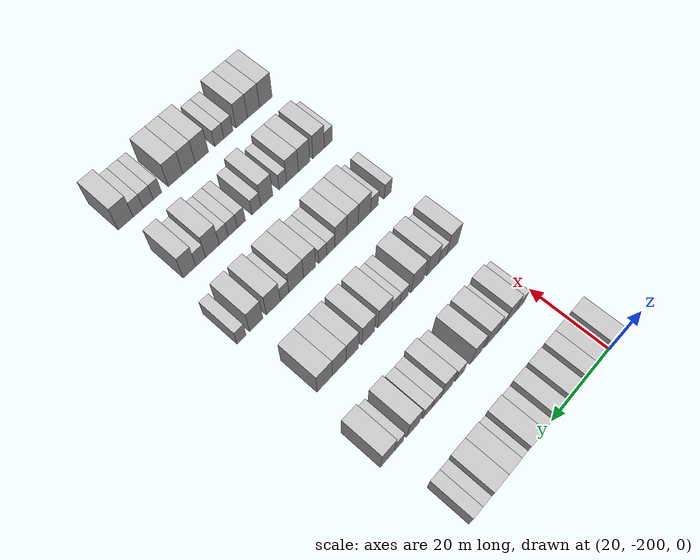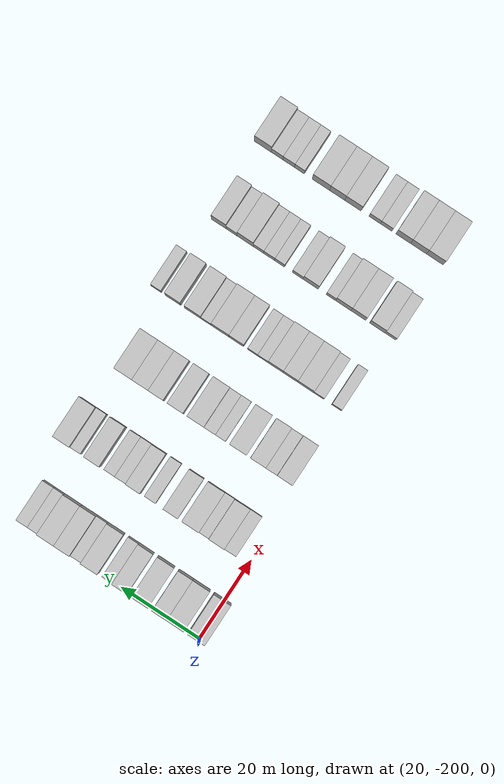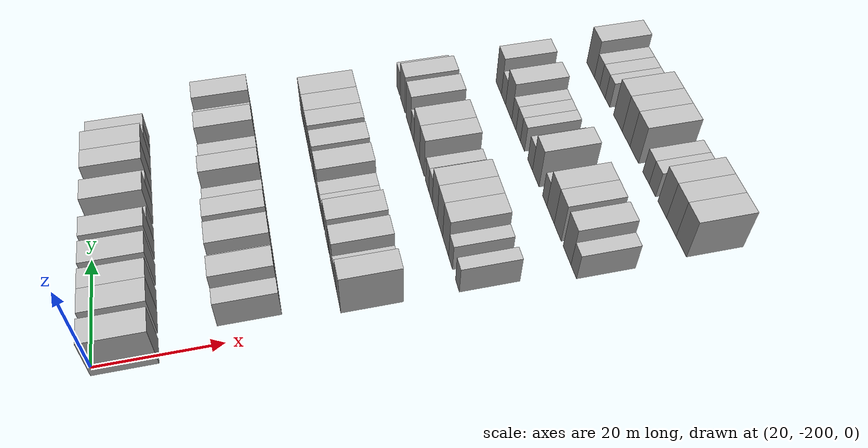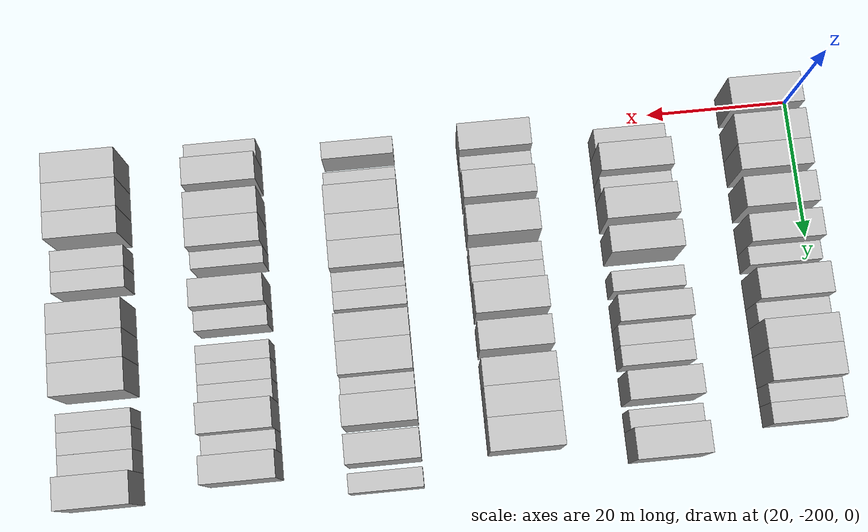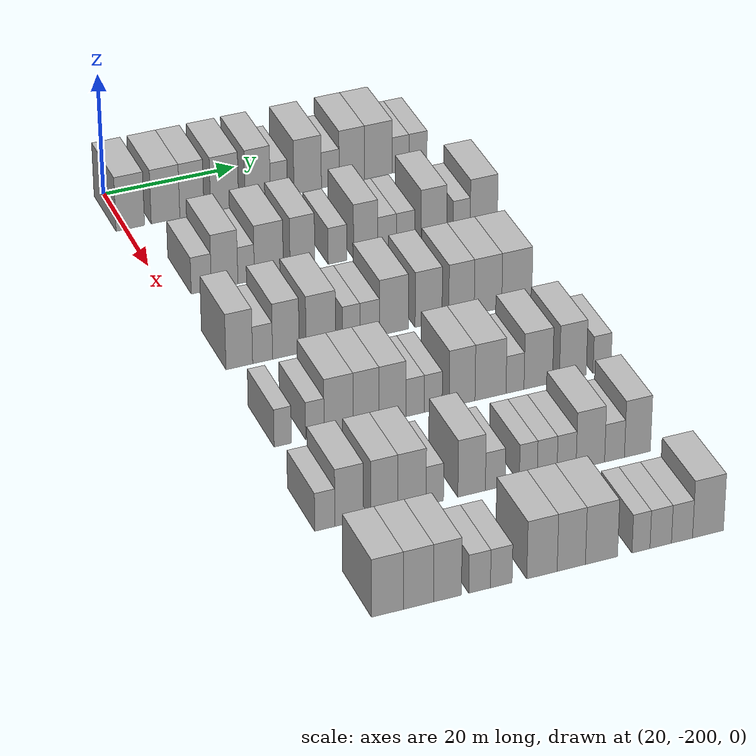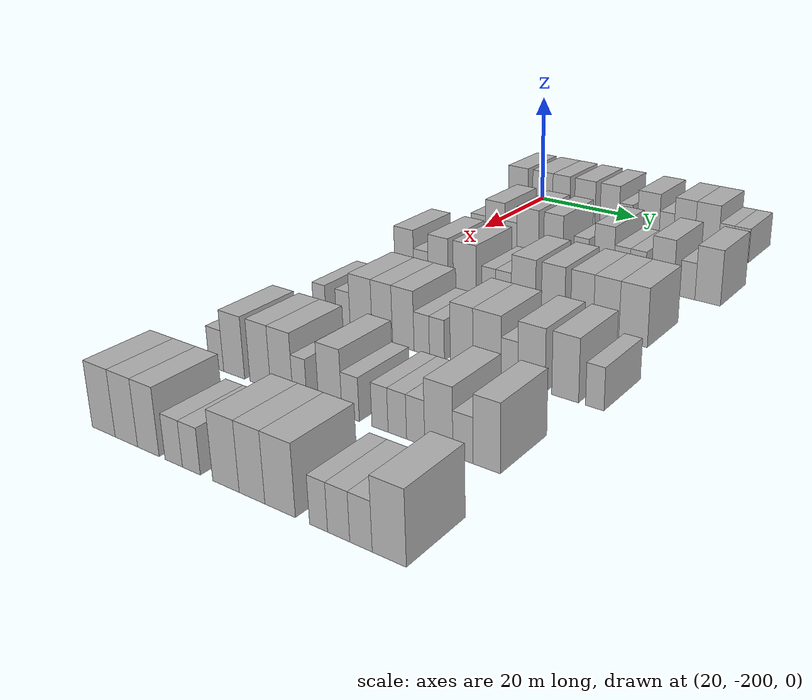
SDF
<sdf version="1.6">
 <world name="default">
  <model name="building_42">
   <static>1</static>
   <pose>25.0000 -199.2890 0 0.000000 0.000000 0.000000</pose>
   <link name="link">
    <pose>0 0 4.50 0 0 0</pose>
    <collision name="collision"><geometry><box><size>10.0000 4.2719 9.0000</size></box></geometry></collision>
    <visual name="visual">
     <cast_shadows>0</cast_shadows>
     <geometry><box><size>10.0000 4.2719 9.0000</size></box></geometry>
     <material>
      <script>
       <uri>model://HANNAS_wall/materials/scripts</uri>
       <uri>model://HANNAS_wall/materials/textures</uri>
       <name>vrc/HANNAS_wall</name>
      </script>
     </material>
    </visual>
   </link>
  </model>
  <model name="building_43">
   <static>1</static>
   <pose>25.0000 -194.0000 0 0.000000 0.000000 0.000000</pose>
   <link name="link">
    <pose>0 0 4.50 0 0 0</pose>
    <collision name="collision"><geometry><box><size>10.0000 4.3061 9.0000</size></box></geometry></collision>
    <visual name="visual">
     <cast_shadows>0</cast_shadows>
     <geometry><box><size>10.0000 4.3061 9.0000</size></box></geometry>
     <material>
      <script>
       <uri>model://HANNAS_wall/materials/scripts</uri>
       <uri>model://HANNAS_wall/materials/textures</uri>
       <name>vrc/HANNAS_wall</name>
      </script>
     </material>
    </visual>
   </link>
  </model>
  <model name="building_44">
   <static>1</static>
   <pose>25.0000 -190.0190 0 0.000000 0.000000 0.000000</pose>
   <link name="link">
    <pose>0 0 4.50 0 0 0</pose>
    <collision name="collision"><geometry><box><size>10.0000 3.6559 9.0000</size></box></geometry></collision>
    <visual name="visual">
     <cast_shadows>0</cast_shadows>
     <geometry><box><size>10.0000 3.6559 9.0000</size></box></geometry>
     <material>
      <script>
       <uri>model://HANNAS_wall/materials/scripts</uri>
       <uri>model://HANNAS_wall/materials/textures</uri>
       <name>vrc/HANNAS_wall</name>
      </script>
     </material>
    </visual>
   </link>
  </model>
  <model name="building_45">
   <static>1</static>
   <pose>25.0000 -185.0642 0 0.000000 0.000000 0.000000</pose>
   <link name="link">
    <pose>0 0 4.50 0 0 0</pose>
    <collision name="collision"><geometry><box><size>10.0000 4.2538 9.0000</size></box></geometry></collision>
    <visual name="visual">
     <cast_shadows>0</cast_shadows>
     <geometry><box><size>10.0000 4.2538 9.0000</size></box></geometry>
     <material>
      <script>
       <uri>model://HANNAS_wall/materials/scripts</uri>
       <uri>model://HANNAS_wall/materials/textures</uri>
       <name>vrc/HANNAS_wall</name>
      </script>
     </material>
    </visual>
   </link>
  </model>
  <model name="building_46">
   <static>1</static>
   <pose>25.0000 -180.0141 0 0.000000 0.000000 0.000000</pose>
   <link name="link">
    <pose>0 0 4.50 0 0 0</pose>
    <collision name="collision"><geometry><box><size>10.0000 3.8462 9.0000</size></box></geometry></collision>
    <visual name="visual">
     <cast_shadows>0</cast_shadows>
     <geometry><box><size>10.0000 3.8462 9.0000</size></box></geometry>
     <material>
      <script>
       <uri>model://HANNAS_wall/materials/scripts</uri>
       <uri>model://HANNAS_wall/materials/textures</uri>
       <name>vrc/HANNAS_wall</name>
      </script>
     </material>
    </visual>
   </link>
  </model>
  <model name="building_47">
   <static>1</static>
   <pose>25.0000 -176.7822 0 0.000000 0.000000 0.000000</pose>
   <link name="link">
    <pose>0 0 3.00 0 0 0</pose>
    <collision name="collision"><geometry><box><size>10.0000 2.6176 6.0000</size></box></geometry></collision>
    <visual name="visual">
     <cast_shadows>0</cast_shadows>
     <geometry><box><size>10.0000 2.6176 6.0000</size></box></geometry>
     <material>
      <script>
       <uri>model://HANNAS_wall/materials/scripts</uri>
       <uri>model://HANNAS_wall/materials/textures</uri>
       <name>vrc/HANNAS_wall</name>
      </script>
     </material>
    </visual>
   </link>
  </model>
  <model name="building_48">
   <static>1</static>
   <pose>25.0000 -172.3605 0 0.000000 0.000000 0.000000</pose>
   <link name="link">
    <pose>0 0 4.50 0 0 0</pose>
    <collision name="collision"><geometry><box><size>10.0000 4.2258 9.0000</size></box></geometry></collision>
    <visual name="visual">
     <cast_shadows>0</cast_shadows>
     <geometry><box><size>10.0000 4.2258 9.0000</size></box></geometry>
     <material>
      <script>
       <uri>model://HANNAS_wall/materials/scripts</uri>
       <uri>model://HANNAS_wall/materials/textures</uri>
       <name>vrc/HANNAS_wall</name>
      </script>
     </material>
    </visual>
   </link>
  </model>
  <model name="building_49">
   <static>1</static>
   <pose>25.0000 -168.8701 0 0.000000 0.000000 0.000000</pose>
   <link name="link">
    <pose>0 0 3.00 0 0 0</pose>
    <collision name="collision"><geometry><box><size>10.0000 2.7550 6.0000</size></box></geometry></collision>
    <visual name="visual">
     <cast_shadows>0</cast_shadows>
     <geometry><box><size>10.0000 2.7550 6.0000</size></box></geometry>
     <material>
      <script>
       <uri>model://HANNAS_wall/materials/scripts</uri>
       <uri>model://HANNAS_wall/materials/textures</uri>
       <name>vrc/HANNAS_wall</name>
      </script>
     </material>
    </visual>
   </link>
  </model>
  <model name="building_50">
   <static>1</static>
   <pose>25.0000 -165.5232 0 0.000000 0.000000 0.000000</pose>
   <link name="link">
    <pose>0 0 4.50 0 0 0</pose>
    <collision name="collision"><geometry><box><size>10.0000 3.9390 9.0000</size></box></geometry></collision>
    <visual name="visual">
     <cast_shadows>0</cast_shadows>
     <geometry><box><size>10.0000 3.9390 9.0000</size></box></geometry>
     <material>
      <script>
       <uri>model://HANNAS_wall/materials/scripts</uri>
       <uri>model://HANNAS_wall/materials/textures</uri>
       <name>vrc/HANNAS_wall</name>
      </script>
     </material>
    </visual>
   </link>
  </model>
  <model name="building_51">
   <static>1</static>
   <pose>25.0000 -161.3885 0 0.000000 0.000000 0.000000</pose>
   <link name="link">
    <pose>0 0 4.50 0 0 0</pose>
    <collision name="collision"><geometry><box><size>10.0000 4.3303 9.0000</size></box></geometry></collision>
    <visual name="visual">
     <cast_shadows>0</cast_shadows>
     <geometry><box><size>10.0000 4.3303 9.0000</size></box></geometry>
     <material>
      <script>
       <uri>model://HANNAS_wall/materials/scripts</uri>
       <uri>model://HANNAS_wall/materials/textures</uri>
       <name>vrc/HANNAS_wall</name>
      </script>
     </material>
    </visual>
   </link>
  </model>
  <model name="building_52">
   <static>1</static>
   <pose>25.0000 -157.9420 0 0.000000 0.000000 0.000000</pose>
   <link name="link">
    <pose>0 0 3.00 0 0 0</pose>
    <collision name="collision"><geometry><box><size>10.0000 2.5628 6.0000</size></box></geometry></collision>
    <visual name="visual">
     <cast_shadows>0</cast_shadows>
     <geometry><box><size>10.0000 2.5628 6.0000</size></box></geometry>
     <material>
      <script>
       <uri>model://HANNAS_wall/materials/scripts</uri>
       <uri>model://HANNAS_wall/materials/textures</uri>
       <name>vrc/HANNAS_wall</name>
      </script>
     </material>
    </visual>
   </link>
  </model>
  <model name="building_53">
   <static>1</static>
   <pose>25.0000 -155.2368 0 0.000000 0.000000 0.000000</pose>
   <link name="link">
    <pose>0 0 3.00 0 0 0</pose>
    <collision name="collision"><geometry><box><size>10.0000 2.8476 6.0000</size></box></geometry></collision>
    <visual name="visual">
     <cast_shadows>0</cast_shadows>
     <geometry><box><size>10.0000 2.8476 6.0000</size></box></geometry>
     <material>
      <script>
       <uri>model://HANNAS_wall/materials/scripts</uri>
       <uri>model://HANNAS_wall/materials/textures</uri>
       <name>vrc/HANNAS_wall</name>
      </script>
     </material>
    </visual>
   </link>
  </model>
  <model name="building_205">
   <static>1</static>
   <pose>44.0000 -195.2725 0 0.000000 0.000000 0.000000</pose>
   <link name="link">
    <pose>0 0 3.00 0 0 0</pose>
    <collision name="collision"><geometry><box><size>10.0000 2.9672 6.0000</size></box></geometry></collision>
    <visual name="visual">
     <cast_shadows>0</cast_shadows>
     <geometry><box><size>10.0000 2.9672 6.0000</size></box></geometry>
     <material>
      <script>
       <uri>model://HANNAS_wall/materials/scripts</uri>
       <uri>model://HANNAS_wall/materials/textures</uri>
       <name>vrc/HANNAS_wall</name>
      </script>
     </material>
    </visual>
   </link>
  </model>
  <model name="building_206">
   <static>1</static>
   <pose>44.0000 -191.8325 0 0.000000 0.000000 0.000000</pose>
   <link name="link">
    <pose>0 0 4.50 0 0 0</pose>
    <collision name="collision"><geometry><box><size>10.0000 3.9128 9.0000</size></box></geometry></collision>
    <visual name="visual">
     <cast_shadows>0</cast_shadows>
     <geometry><box><size>10.0000 3.9128 9.0000</size></box></geometry>
     <material>
      <script>
       <uri>model://HANNAS_wall/materials/scripts</uri>
       <uri>model://HANNAS_wall/materials/textures</uri>
       <name>vrc/HANNAS_wall</name>
      </script>
     </material>
    </visual>
   </link>
  </model>
  <model name="building_207">
   <static>1</static>
   <pose>44.0000 -188.6522 0 0.000000 0.000000 0.000000</pose>
   <link name="link">
    <pose>0 0 3.00 0 0 0</pose>
    <collision name="collision"><geometry><box><size>10.0000 2.4478 6.0000</size></box></geometry></collision>
    <visual name="visual">
     <cast_shadows>0</cast_shadows>
     <geometry><box><size>10.0000 2.4478 6.0000</size></box></geometry>
     <material>
      <script>
       <uri>model://HANNAS_wall/materials/scripts</uri>
       <uri>model://HANNAS_wall/materials/textures</uri>
       <name>vrc/HANNAS_wall</name>
      </script>
     </material>
    </visual>
   </link>
  </model>
  <model name="building_208">
   <static>1</static>
   <pose>44.0000 -185.2780 0 0.000000 0.000000 0.000000</pose>
   <link name="link">
    <pose>0 0 4.50 0 0 0</pose>
    <collision name="collision"><geometry><box><size>10.0000 4.3006 9.0000</size></box></geometry></collision>
    <visual name="visual">
     <cast_shadows>0</cast_shadows>
     <geometry><box><size>10.0000 4.3006 9.0000</size></box></geometry>
     <material>
      <script>
       <uri>model://HANNAS_wall/materials/scripts</uri>
       <uri>model://HANNAS_wall/materials/textures</uri>
       <name>vrc/HANNAS_wall</name>
      </script>
     </material>
    </visual>
   </link>
  </model>
  <model name="building_209">
   <static>1</static>
   <pose>44.0000 -180.2780 0 0.000000 0.000000 0.000000</pose>
   <link name="link">
    <pose>0 0 4.50 0 0 0</pose>
    <collision name="collision"><geometry><box><size>10.0000 3.6994 9.0000</size></box></geometry></collision>
    <visual name="visual">
     <cast_shadows>0</cast_shadows>
     <geometry><box><size>10.0000 3.6994 9.0000</size></box></geometry>
     <material>
      <script>
       <uri>model://HANNAS_wall/materials/scripts</uri>
       <uri>model://HANNAS_wall/materials/textures</uri>
       <name>vrc/HANNAS_wall</name>
      </script>
     </material>
    </visual>
   </link>
  </model>
  <model name="building_210">
   <static>1</static>
   <pose>44.0000 -175.0197 0 0.000000 0.000000 0.000000</pose>
   <link name="link">
    <pose>0 0 3.00 0 0 0</pose>
    <collision name="collision"><geometry><box><size>10.0000 2.8171 6.0000</size></box></geometry></collision>
    <visual name="visual">
     <cast_shadows>0</cast_shadows>
     <geometry><box><size>10.0000 2.8171 6.0000</size></box></geometry>
     <material>
      <script>
       <uri>model://HANNAS_wall/materials/scripts</uri>
       <uri>model://HANNAS_wall/materials/textures</uri>
       <name>vrc/HANNAS_wall</name>
      </script>
     </material>
    </visual>
   </link>
  </model>
  <model name="building_211">
   <static>1</static>
   <pose>44.0000 -170.7914 0 0.000000 0.000000 0.000000</pose>
   <link name="link">
    <pose>0 0 4.50 0 0 0</pose>
    <collision name="collision"><geometry><box><size>10.0000 3.6396 9.0000</size></box></geometry></collision>
    <visual name="visual">
     <cast_shadows>0</cast_shadows>
     <geometry><box><size>10.0000 3.6396 9.0000</size></box></geometry>
     <material>
      <script>
       <uri>model://HANNAS_wall/materials/scripts</uri>
       <uri>model://HANNAS_wall/materials/textures</uri>
       <name>vrc/HANNAS_wall</name>
      </script>
     </material>
    </visual>
   </link>
  </model>
  <model name="building_212">
   <static>1</static>
   <pose>44.0000 -167.5567 0 0.000000 0.000000 0.000000</pose>
   <link name="link">
    <pose>0 0 3.00 0 0 0</pose>
    <collision name="collision"><geometry><box><size>10.0000 2.8297 6.0000</size></box></geometry></collision>
    <visual name="visual">
     <cast_shadows>0</cast_shadows>
     <geometry><box><size>10.0000 2.8297 6.0000</size></box></geometry>
     <material>
      <script>
       <uri>model://HANNAS_wall/materials/scripts</uri>
       <uri>model://HANNAS_wall/materials/textures</uri>
       <name>vrc/HANNAS_wall</name>
      </script>
     </material>
    </visual>
   </link>
  </model>
  <model name="building_213">
   <static>1</static>
   <pose>44.0000 -164.7646 0 0.000000 0.000000 0.000000</pose>
   <link name="link">
    <pose>0 0 3.00 0 0 0</pose>
    <collision name="collision"><geometry><box><size>10.0000 2.7545 6.0000</size></box></geometry></collision>
    <visual name="visual">
     <cast_shadows>0</cast_shadows>
     <geometry><box><size>10.0000 2.7545 6.0000</size></box></geometry>
     <material>
      <script>
       <uri>model://HANNAS_wall/materials/scripts</uri>
       <uri>model://HANNAS_wall/materials/textures</uri>
       <name>vrc/HANNAS_wall</name>
      </script>
     </material>
    </visual>
   </link>
  </model>
  <model name="building_214">
   <static>1</static>
   <pose>44.0000 -160.4401 0 0.000000 0.000000 0.000000</pose>
   <link name="link">
    <pose>0 0 4.50 0 0 0</pose>
    <collision name="collision"><geometry><box><size>10.0000 3.8945 9.0000</size></box></geometry></collision>
    <visual name="visual">
     <cast_shadows>0</cast_shadows>
     <geometry><box><size>10.0000 3.8945 9.0000</size></box></geometry>
     <material>
      <script>
       <uri>model://HANNAS_wall/materials/scripts</uri>
       <uri>model://HANNAS_wall/materials/textures</uri>
       <name>vrc/HANNAS_wall</name>
      </script>
     </material>
    </visual>
   </link>
  </model>
  <model name="building_215">
   <static>1</static>
   <pose>44.0000 -156.1979 0 0.000000 0.000000 0.000000</pose>
   <link name="link">
    <pose>0 0 3.00 0 0 0</pose>
    <collision name="collision"><geometry><box><size>10.0000 2.5899 6.0000</size></box></geometry></collision>
    <visual name="visual">
     <cast_shadows>0</cast_shadows>
     <geometry><box><size>10.0000 2.5899 6.0000</size></box></geometry>
     <material>
      <script>
       <uri>model://HANNAS_wall/materials/scripts</uri>
       <uri>model://HANNAS_wall/materials/textures</uri>
       <name>vrc/HANNAS_wall</name>
      </script>
     </material>
    </visual>
   </link>
  </model>
  <model name="building_216">
   <static>1</static>
   <pose>44.0000 -152.8119 0 0.000000 0.000000 0.000000</pose>
   <link name="link">
    <pose>0 0 4.50 0 0 0</pose>
    <collision name="collision"><geometry><box><size>10.0000 4.1821 9.0000</size></box></geometry></collision>
    <visual name="visual">
     <cast_shadows>0</cast_shadows>
     <geometry><box><size>10.0000 4.1821 9.0000</size></box></geometry>
     <material>
      <script>
       <uri>model://HANNAS_wall/materials/scripts</uri>
       <uri>model://HANNAS_wall/materials/textures</uri>
       <name>vrc/HANNAS_wall</name>
      </script>
     </material>
    </visual>
   </link>
  </model>
  <model name="building_378">
   <static>1</static>
   <pose>63.0000 -196.5044 0 0.000000 0.000000 0.000000</pose>
   <link name="link">
    <pose>0 0 4.50 0 0 0</pose>
    <collision name="collision"><geometry><box><size>10.0000 3.8232 9.0000</size></box></geometry></collision>
    <visual name="visual">
     <cast_shadows>0</cast_shadows>
     <geometry><box><size>10.0000 3.8232 9.0000</size></box></geometry>
     <material>
      <script>
       <uri>model://HANNAS_wall/materials/scripts</uri>
       <uri>model://HANNAS_wall/materials/textures</uri>
       <name>vrc/HANNAS_wall</name>
      </script>
     </material>
    </visual>
   </link>
  </model>
  <model name="building_379">
   <static>1</static>
   <pose>63.0000 -193.1574 0 0.000000 0.000000 0.000000</pose>
   <link name="link">
    <pose>0 0 3.00 0 0 0</pose>
    <collision name="collision"><geometry><box><size>10.0000 2.8709 6.0000</size></box></geometry></collision>
    <visual name="visual">
     <cast_shadows>0</cast_shadows>
     <geometry><box><size>10.0000 2.8709 6.0000</size></box></geometry>
     <material>
      <script>
       <uri>model://HANNAS_wall/materials/scripts</uri>
       <uri>model://HANNAS_wall/materials/textures</uri>
       <name>vrc/HANNAS_wall</name>
      </script>
     </material>
    </visual>
   </link>
  </model>
  <model name="building_380">
   <static>1</static>
   <pose>63.0000 -189.7970 0 0.000000 0.000000 0.000000</pose>
   <link name="link">
    <pose>0 0 4.50 0 0 0</pose>
    <collision name="collision"><geometry><box><size>10.0000 3.8500 9.0000</size></box></geometry></collision>
    <visual name="visual">
     <cast_shadows>0</cast_shadows>
     <geometry><box><size>10.0000 3.8500 9.0000</size></box></geometry>
     <material>
      <script>
       <uri>model://HANNAS_wall/materials/scripts</uri>
       <uri>model://HANNAS_wall/materials/textures</uri>
       <name>vrc/HANNAS_wall</name>
      </script>
     </material>
    </visual>
   </link>
  </model>
  <model name="building_381">
   <static>1</static>
   <pose>63.0000 -184.7285 0 0.000000 0.000000 0.000000</pose>
   <link name="link">
    <pose>0 0 4.50 0 0 0</pose>
    <collision name="collision"><geometry><box><size>10.0000 4.2868 9.0000</size></box></geometry></collision>
    <visual name="visual">
     <cast_shadows>0</cast_shadows>
     <geometry><box><size>10.0000 4.2868 9.0000</size></box></geometry>
     <material>
      <script>
       <uri>model://HANNAS_wall/materials/scripts</uri>
       <uri>model://HANNAS_wall/materials/textures</uri>
       <name>vrc/HANNAS_wall</name>
      </script>
     </material>
    </visual>
   </link>
  </model>
  <model name="building_382">
   <static>1</static>
   <pose>63.0000 -180.3071 0 0.000000 0.000000 0.000000</pose>
   <link name="link">
    <pose>0 0 3.00 0 0 0</pose>
    <collision name="collision"><geometry><box><size>10.0000 2.5561 6.0000</size></box></geometry></collision>
    <visual name="visual">
     <cast_shadows>0</cast_shadows>
     <geometry><box><size>10.0000 2.5561 6.0000</size></box></geometry>
     <material>
      <script>
       <uri>model://HANNAS_wall/materials/scripts</uri>
       <uri>model://HANNAS_wall/materials/textures</uri>
       <name>vrc/HANNAS_wall</name>
      </script>
     </material>
    </visual>
   </link>
  </model>
  <model name="building_383">
   <static>1</static>
   <pose>63.0000 -177.5992 0 0.000000 0.000000 0.000000</pose>
   <link name="link">
    <pose>0 0 3.00 0 0 0</pose>
    <collision name="collision"><geometry><box><size>10.0000 2.8597 6.0000</size></box></geometry></collision>
    <visual name="visual">
     <cast_shadows>0</cast_shadows>
     <geometry><box><size>10.0000 2.8597 6.0000</size></box></geometry>
     <material>
      <script>
       <uri>model://HANNAS_wall/materials/scripts</uri>
       <uri>model://HANNAS_wall/materials/textures</uri>
       <name>vrc/HANNAS_wall</name>
      </script>
     </material>
    </visual>
   </link>
  </model>
  <model name="building_384">
   <static>1</static>
   <pose>63.0000 -174.0473 0 0.000000 0.000000 0.000000</pose>
   <link name="link">
    <pose>0 0 4.50 0 0 0</pose>
    <collision name="collision"><geometry><box><size>10.0000 4.2440 9.0000</size></box></geometry></collision>
    <visual name="visual">
     <cast_shadows>0</cast_shadows>
     <geometry><box><size>10.0000 4.2440 9.0000</size></box></geometry>
     <material>
      <script>
       <uri>model://HANNAS_wall/materials/scripts</uri>
       <uri>model://HANNAS_wall/materials/textures</uri>
       <name>vrc/HANNAS_wall</name>
      </script>
     </material>
    </visual>
   </link>
  </model>
  <model name="building_385">
   <static>1</static>
   <pose>63.0000 -168.9336 0 0.000000 0.000000 0.000000</pose>
   <link name="link">
    <pose>0 0 4.50 0 0 0</pose>
    <collision name="collision"><geometry><box><size>10.0000 3.9835 9.0000</size></box></geometry></collision>
    <visual name="visual">
     <cast_shadows>0</cast_shadows>
     <geometry><box><size>10.0000 3.9835 9.0000</size></box></geometry>
     <material>
      <script>
       <uri>model://HANNAS_wall/materials/scripts</uri>
       <uri>model://HANNAS_wall/materials/textures</uri>
       <name>vrc/HANNAS_wall</name>
      </script>
     </material>
    </visual>
   </link>
  </model>
  <model name="building_386">
   <static>1</static>
   <pose>63.0000 -164.0548 0 0.000000 0.000000 0.000000</pose>
   <link name="link">
    <pose>0 0 4.50 0 0 0</pose>
    <collision name="collision"><geometry><box><size>10.0000 3.7743 9.0000</size></box></geometry></collision>
    <visual name="visual">
     <cast_shadows>0</cast_shadows>
     <geometry><box><size>10.0000 3.7743 9.0000</size></box></geometry>
     <material>
      <script>
       <uri>model://HANNAS_wall/materials/scripts</uri>
       <uri>model://HANNAS_wall/materials/textures</uri>
       <name>vrc/HANNAS_wall</name>
      </script>
     </material>
    </visual>
   </link>
  </model>
  <model name="building_387">
   <static>1</static>
   <pose>63.0000 -160.1078 0 0.000000 0.000000 0.000000</pose>
   <link name="link">
    <pose>0 0 4.50 0 0 0</pose>
    <collision name="collision"><geometry><box><size>10.0000 4.1197 9.0000</size></box></geometry></collision>
    <visual name="visual">
     <cast_shadows>0</cast_shadows>
     <geometry><box><size>10.0000 4.1197 9.0000</size></box></geometry>
     <material>
      <script>
       <uri>model://HANNAS_wall/materials/scripts</uri>
       <uri>model://HANNAS_wall/materials/textures</uri>
       <name>vrc/HANNAS_wall</name>
      </script>
     </material>
    </visual>
   </link>
  </model>
  <model name="building_388">
   <static>1</static>
   <pose>63.0000 -155.7997 0 0.000000 0.000000 0.000000</pose>
   <link name="link">
    <pose>0 0 4.50 0 0 0</pose>
    <collision name="collision"><geometry><box><size>10.0000 4.4964 9.0000</size></box></geometry></collision>
    <visual name="visual">
     <cast_shadows>0</cast_shadows>
     <geometry><box><size>10.0000 4.4964 9.0000</size></box></geometry>
     <material>
      <script>
       <uri>model://HANNAS_wall/materials/scripts</uri>
       <uri>model://HANNAS_wall/materials/textures</uri>
       <name>vrc/HANNAS_wall</name>
      </script>
     </material>
    </visual>
   </link>
  </model>
  <model name="building_547">
   <static>1</static>
   <pose>82.0000 -197.2819 0 0.000000 0.000000 0.000000</pose>
   <link name="link">
    <pose>0 0 3.00 0 0 0</pose>
    <collision name="collision"><geometry><box><size>10.0000 2.4292 6.0000</size></box></geometry></collision>
    <visual name="visual">
     <cast_shadows>0</cast_shadows>
     <geometry><box><size>10.0000 2.4292 6.0000</size></box></geometry>
     <material>
      <script>
       <uri>model://HANNAS_wall/materials/scripts</uri>
       <uri>model://HANNAS_wall/materials/textures</uri>
       <name>vrc/HANNAS_wall</name>
      </script>
     </material>
    </visual>
   </link>
  </model>
  <model name="building_548">
   <static>1</static>
   <pose>82.0000 -192.7655 0 0.000000 0.000000 0.000000</pose>
   <link name="link">
    <pose>0 0 3.00 0 0 0</pose>
    <collision name="collision"><geometry><box><size>10.0000 2.6036 6.0000</size></box></geometry></collision>
    <visual name="visual">
     <cast_shadows>0</cast_shadows>
     <geometry><box><size>10.0000 2.6036 6.0000</size></box></geometry>
     <material>
      <script>
       <uri>model://HANNAS_wall/materials/scripts</uri>
       <uri>model://HANNAS_wall/materials/textures</uri>
       <name>vrc/HANNAS_wall</name>
      </script>
     </material>
    </visual>
   </link>
  </model>
  <model name="building_549">
   <static>1</static>
   <pose>82.0000 -189.4163 0 0.000000 0.000000 0.000000</pose>
   <link name="link">
    <pose>0 0 4.50 0 0 0</pose>
    <collision name="collision"><geometry><box><size>10.0000 4.0948 9.0000</size></box></geometry></collision>
    <visual name="visual">
     <cast_shadows>0</cast_shadows>
     <geometry><box><size>10.0000 4.0948 9.0000</size></box></geometry>
     <material>
      <script>
       <uri>model://HANNAS_wall/materials/scripts</uri>
       <uri>model://HANNAS_wall/materials/textures</uri>
       <name>vrc/HANNAS_wall</name>
      </script>
     </material>
    </visual>
   </link>
  </model>
  <model name="building_550">
   <static>1</static>
   <pose>82.0000 -185.5245 0 0.000000 0.000000 0.000000</pose>
   <link name="link">
    <pose>0 0 4.50 0 0 0</pose>
    <collision name="collision"><geometry><box><size>10.0000 3.6890 9.0000</size></box></geometry></collision>
    <visual name="visual">
     <cast_shadows>0</cast_shadows>
     <geometry><box><size>10.0000 3.6890 9.0000</size></box></geometry>
     <material>
      <script>
       <uri>model://HANNAS_wall/materials/scripts</uri>
       <uri>model://HANNAS_wall/materials/textures</uri>
       <name>vrc/HANNAS_wall</name>
      </script>
     </material>
    </visual>
   </link>
  </model>
  <model name="building_551">
   <static>1</static>
   <pose>82.0000 -181.7789 0 0.000000 0.000000 0.000000</pose>
   <link name="link">
    <pose>0 0 4.50 0 0 0</pose>
    <collision name="collision"><geometry><box><size>10.0000 3.8023 9.0000</size></box></geometry></collision>
    <visual name="visual">
     <cast_shadows>0</cast_shadows>
     <geometry><box><size>10.0000 3.8023 9.0000</size></box></geometry>
     <material>
      <script>
       <uri>model://HANNAS_wall/materials/scripts</uri>
       <uri>model://HANNAS_wall/materials/textures</uri>
       <name>vrc/HANNAS_wall</name>
      </script>
     </material>
    </visual>
   </link>
  </model>
  <model name="building_552">
   <static>1</static>
   <pose>82.0000 -178.5507 0 0.000000 0.000000 0.000000</pose>
   <link name="link">
    <pose>0 0 3.00 0 0 0</pose>
    <collision name="collision"><geometry><box><size>10.0000 2.6540 6.0000</size></box></geometry></collision>
    <visual name="visual">
     <cast_shadows>0</cast_shadows>
     <geometry><box><size>10.0000 2.6540 6.0000</size></box></geometry>
     <material>
      <script>
       <uri>model://HANNAS_wall/materials/scripts</uri>
       <uri>model://HANNAS_wall/materials/textures</uri>
       <name>vrc/HANNAS_wall</name>
      </script>
     </material>
    </visual>
   </link>
  </model>
  <model name="building_553">
   <static>1</static>
   <pose>82.0000 -175.9504 0 0.000000 0.000000 0.000000</pose>
   <link name="link">
    <pose>0 0 3.00 0 0 0</pose>
    <collision name="collision"><geometry><box><size>10.0000 2.5466 6.0000</size></box></geometry></collision>
    <visual name="visual">
     <cast_shadows>0</cast_shadows>
     <geometry><box><size>10.0000 2.5466 6.0000</size></box></geometry>
     <material>
      <script>
       <uri>model://HANNAS_wall/materials/scripts</uri>
       <uri>model://HANNAS_wall/materials/textures</uri>
       <name>vrc/HANNAS_wall</name>
      </script>
     </material>
    </visual>
   </link>
  </model>
  <model name="building_554">
   <static>1</static>
   <pose>82.0000 -171.8105 0 0.000000 0.000000 0.000000</pose>
   <link name="link">
    <pose>0 0 4.50 0 0 0</pose>
    <collision name="collision"><geometry><box><size>10.0000 3.7333 9.0000</size></box></geometry></collision>
    <visual name="visual">
     <cast_shadows>0</cast_shadows>
     <geometry><box><size>10.0000 3.7333 9.0000</size></box></geometry>
     <material>
      <script>
       <uri>model://HANNAS_wall/materials/scripts</uri>
       <uri>model://HANNAS_wall/materials/textures</uri>
       <name>vrc/HANNAS_wall</name>
      </script>
     </material>
    </visual>
   </link>
  </model>
  <model name="building_555">
   <static>1</static>
   <pose>82.0000 -167.6986 0 0.000000 0.000000 0.000000</pose>
   <link name="link">
    <pose>0 0 4.50 0 0 0</pose>
    <collision name="collision"><geometry><box><size>10.0000 4.4906 9.0000</size></box></geometry></collision>
    <visual name="visual">
     <cast_shadows>0</cast_shadows>
     <geometry><box><size>10.0000 4.4906 9.0000</size></box></geometry>
     <material>
      <script>
       <uri>model://HANNAS_wall/materials/scripts</uri>
       <uri>model://HANNAS_wall/materials/textures</uri>
       <name>vrc/HANNAS_wall</name>
      </script>
     </material>
    </visual>
   </link>
  </model>
  <model name="building_556">
   <static>1</static>
   <pose>82.0000 -164.1453 0 0.000000 0.000000 0.000000</pose>
   <link name="link">
    <pose>0 0 3.00 0 0 0</pose>
    <collision name="collision"><geometry><box><size>10.0000 2.6160 6.0000</size></box></geometry></collision>
    <visual name="visual">
     <cast_shadows>0</cast_shadows>
     <geometry><box><size>10.0000 2.6160 6.0000</size></box></geometry>
     <material>
      <script>
       <uri>model://HANNAS_wall/materials/scripts</uri>
       <uri>model://HANNAS_wall/materials/textures</uri>
       <name>vrc/HANNAS_wall</name>
      </script>
     </material>
    </visual>
   </link>
  </model>
  <model name="building_557">
   <static>1</static>
   <pose>82.0000 -160.7545 0 0.000000 0.000000 0.000000</pose>
   <link name="link">
    <pose>0 0 4.50 0 0 0</pose>
    <collision name="collision"><geometry><box><size>10.0000 4.1656 9.0000</size></box></geometry></collision>
    <visual name="visual">
     <cast_shadows>0</cast_shadows>
     <geometry><box><size>10.0000 4.1656 9.0000</size></box></geometry>
     <material>
      <script>
       <uri>model://HANNAS_wall/materials/scripts</uri>
       <uri>model://HANNAS_wall/materials/textures</uri>
       <name>vrc/HANNAS_wall</name>
      </script>
     </material>
    </visual>
   </link>
  </model>
  <model name="building_558">
   <static>1</static>
   <pose>82.0000 -155.6962 0 0.000000 0.000000 0.000000</pose>
   <link name="link">
    <pose>0 0 4.50 0 0 0</pose>
    <collision name="collision"><geometry><box><size>10.0000 3.9509 9.0000</size></box></geometry></collision>
    <visual name="visual">
     <cast_shadows>0</cast_shadows>
     <geometry><box><size>10.0000 3.9509 9.0000</size></box></geometry>
     <material>
      <script>
       <uri>model://HANNAS_wall/materials/scripts</uri>
       <uri>model://HANNAS_wall/materials/textures</uri>
       <name>vrc/HANNAS_wall</name>
      </script>
     </material>
    </visual>
   </link>
  </model>
  <model name="building_559">
   <static>1</static>
   <pose>82.0000 -151.4051 0 0.000000 0.000000 0.000000</pose>
   <link name="link">
    <pose>0 0 3.00 0 0 0</pose>
    <collision name="collision"><geometry><box><size>10.0000 2.6313 6.0000</size></box></geometry></collision>
    <visual name="visual">
     <cast_shadows>0</cast_shadows>
     <geometry><box><size>10.0000 2.6313 6.0000</size></box></geometry>
     <material>
      <script>
       <uri>model://HANNAS_wall/materials/scripts</uri>
       <uri>model://HANNAS_wall/materials/textures</uri>
       <name>vrc/HANNAS_wall</name>
      </script>
     </material>
    </visual>
   </link>
  </model>
  <model name="building_714">
   <static>1</static>
   <pose>101.0000 -198.5865 0 0.000000 0.000000 0.000000</pose>
   <link name="link">
    <pose>0 0 3.00 0 0 0</pose>
    <collision name="collision"><geometry><box><size>10.0000 2.7585 6.0000</size></box></geometry></collision>
    <visual name="visual">
     <cast_shadows>0</cast_shadows>
     <geometry><box><size>10.0000 2.7585 6.0000</size></box></geometry>
     <material>
      <script>
       <uri>model://HANNAS_wall/materials/scripts</uri>
       <uri>model://HANNAS_wall/materials/textures</uri>
       <name>vrc/HANNAS_wall</name>
      </script>
     </material>
    </visual>
   </link>
  </model>
  <model name="building_715">
   <static>1</static>
   <pose>101.0000 -195.2512 0 0.000000 0.000000 0.000000</pose>
   <link name="link">
    <pose>0 0 4.50 0 0 0</pose>
    <collision name="collision"><geometry><box><size>10.0000 3.9122 9.0000</size></box></geometry></collision>
    <visual name="visual">
     <cast_shadows>0</cast_shadows>
     <geometry><box><size>10.0000 3.9122 9.0000</size></box></geometry>
     <material>
      <script>
       <uri>model://HANNAS_wall/materials/scripts</uri>
       <uri>model://HANNAS_wall/materials/textures</uri>
       <name>vrc/HANNAS_wall</name>
      </script>
     </material>
    </visual>
   </link>
  </model>
  <model name="building_716">
   <static>1</static>
   <pose>101.0000 -190.4277 0 0.000000 0.000000 0.000000</pose>
   <link name="link">
    <pose>0 0 4.50 0 0 0</pose>
    <collision name="collision"><geometry><box><size>10.0000 3.7348 9.0000</size></box></geometry></collision>
    <visual name="visual">
     <cast_shadows>0</cast_shadows>
     <geometry><box><size>10.0000 3.7348 9.0000</size></box></geometry>
     <material>
      <script>
       <uri>model://HANNAS_wall/materials/scripts</uri>
       <uri>model://HANNAS_wall/materials/textures</uri>
       <name>vrc/HANNAS_wall</name>
      </script>
     </material>
    </visual>
   </link>
  </model>
  <model name="building_717">
   <static>1</static>
   <pose>101.0000 -186.6022 0 0.000000 0.000000 0.000000</pose>
   <link name="link">
    <pose>0 0 4.50 0 0 0</pose>
    <collision name="collision"><geometry><box><size>10.0000 3.9161 9.0000</size></box></geometry></collision>
    <visual name="visual">
     <cast_shadows>0</cast_shadows>
     <geometry><box><size>10.0000 3.9161 9.0000</size></box></geometry>
     <material>
      <script>
       <uri>model://HANNAS_wall/materials/scripts</uri>
       <uri>model://HANNAS_wall/materials/textures</uri>
       <name>vrc/HANNAS_wall</name>
      </script>
     </material>
    </visual>
   </link>
  </model>
  <model name="building_718">
   <static>1</static>
   <pose>101.0000 -183.4403 0 0.000000 0.000000 0.000000</pose>
   <link name="link">
    <pose>0 0 3.00 0 0 0</pose>
    <collision name="collision"><geometry><box><size>10.0000 2.4077 6.0000</size></box></geometry></collision>
    <visual name="visual">
     <cast_shadows>0</cast_shadows>
     <geometry><box><size>10.0000 2.4077 6.0000</size></box></geometry>
     <material>
      <script>
       <uri>model://HANNAS_wall/materials/scripts</uri>
       <uri>model://HANNAS_wall/materials/textures</uri>
       <name>vrc/HANNAS_wall</name>
      </script>
     </material>
    </visual>
   </link>
  </model>
  <model name="building_719">
   <static>1</static>
   <pose>101.0000 -178.3125 0 0.000000 0.000000 0.000000</pose>
   <link name="link">
    <pose>0 0 4.50 0 0 0</pose>
    <collision name="collision"><geometry><box><size>10.0000 3.8479 9.0000</size></box></geometry></collision>
    <visual name="visual">
     <cast_shadows>0</cast_shadows>
     <geometry><box><size>10.0000 3.8479 9.0000</size></box></geometry>
     <material>
      <script>
       <uri>model://HANNAS_wall/materials/scripts</uri>
       <uri>model://HANNAS_wall/materials/textures</uri>
       <name>vrc/HANNAS_wall</name>
      </script>
     </material>
    </visual>
   </link>
  </model>
  <model name="building_720">
   <static>1</static>
   <pose>101.0000 -175.0024 0 0.000000 0.000000 0.000000</pose>
   <link name="link">
    <pose>0 0 3.00 0 0 0</pose>
    <collision name="collision"><geometry><box><size>10.0000 2.7722 6.0000</size></box></geometry></collision>
    <visual name="visual">
     <cast_shadows>0</cast_shadows>
     <geometry><box><size>10.0000 2.7722 6.0000</size></box></geometry>
     <material>
      <script>
       <uri>model://HANNAS_wall/materials/scripts</uri>
       <uri>model://HANNAS_wall/materials/textures</uri>
       <name>vrc/HANNAS_wall</name>
      </script>
     </material>
    </visual>
   </link>
  </model>
  <model name="building_721">
   <static>1</static>
   <pose>101.0000 -170.3585 0 0.000000 0.000000 0.000000</pose>
   <link name="link">
    <pose>0 0 3.00 0 0 0</pose>
    <collision name="collision"><geometry><box><size>10.0000 2.5156 6.0000</size></box></geometry></collision>
    <visual name="visual">
     <cast_shadows>0</cast_shadows>
     <geometry><box><size>10.0000 2.5156 6.0000</size></box></geometry>
     <material>
      <script>
       <uri>model://HANNAS_wall/materials/scripts</uri>
       <uri>model://HANNAS_wall/materials/textures</uri>
       <name>vrc/HANNAS_wall</name>
      </script>
     </material>
    </visual>
   </link>
  </model>
  <model name="building_722">
   <static>1</static>
   <pose>101.0000 -167.6973 0 0.000000 0.000000 0.000000</pose>
   <link name="link">
    <pose>0 0 3.00 0 0 0</pose>
    <collision name="collision"><geometry><box><size>10.0000 2.8068 6.0000</size></box></geometry></collision>
    <visual name="visual">
     <cast_shadows>0</cast_shadows>
     <geometry><box><size>10.0000 2.8068 6.0000</size></box></geometry>
     <material>
      <script>
       <uri>model://HANNAS_wall/materials/scripts</uri>
       <uri>model://HANNAS_wall/materials/textures</uri>
       <name>vrc/HANNAS_wall</name>
      </script>
     </material>
    </visual>
   </link>
  </model>
  <model name="building_723">
   <static>1</static>
   <pose>101.0000 -164.9420 0 0.000000 0.000000 0.000000</pose>
   <link name="link">
    <pose>0 0 3.00 0 0 0</pose>
    <collision name="collision"><geometry><box><size>10.0000 2.7037 6.0000</size></box></geometry></collision>
    <visual name="visual">
     <cast_shadows>0</cast_shadows>
     <geometry><box><size>10.0000 2.7037 6.0000</size></box></geometry>
     <material>
      <script>
       <uri>model://HANNAS_wall/materials/scripts</uri>
       <uri>model://HANNAS_wall/materials/textures</uri>
       <name>vrc/HANNAS_wall</name>
      </script>
     </material>
    </visual>
   </link>
  </model>
  <model name="building_724">
   <static>1</static>
   <pose>101.0000 -161.5526 0 0.000000 0.000000 0.000000</pose>
   <link name="link">
    <pose>0 0 4.50 0 0 0</pose>
    <collision name="collision"><geometry><box><size>10.0000 4.0752 9.0000</size></box></geometry></collision>
    <visual name="visual">
     <cast_shadows>0</cast_shadows>
     <geometry><box><size>10.0000 4.0752 9.0000</size></box></geometry>
     <material>
      <script>
       <uri>model://HANNAS_wall/materials/scripts</uri>
       <uri>model://HANNAS_wall/materials/textures</uri>
       <name>vrc/HANNAS_wall</name>
      </script>
     </material>
    </visual>
   </link>
  </model>
  <model name="building_725">
   <static>1</static>
   <pose>101.0000 -158.0941 0 0.000000 0.000000 0.000000</pose>
   <link name="link">
    <pose>0 0 3.00 0 0 0</pose>
    <collision name="collision"><geometry><box><size>10.0000 2.8416 6.0000</size></box></geometry></collision>
    <visual name="visual">
     <cast_shadows>0</cast_shadows>
     <geometry><box><size>10.0000 2.8416 6.0000</size></box></geometry>
     <material>
      <script>
       <uri>model://HANNAS_wall/materials/scripts</uri>
       <uri>model://HANNAS_wall/materials/textures</uri>
       <name>vrc/HANNAS_wall</name>
      </script>
     </material>
    </visual>
   </link>
  </model>
  <model name="building_726">
   <static>1</static>
   <pose>101.0000 -154.8113 0 0.000000 0.000000 0.000000</pose>
   <link name="link">
    <pose>0 0 4.50 0 0 0</pose>
    <collision name="collision"><geometry><box><size>10.0000 3.7240 9.0000</size></box></geometry></collision>
    <visual name="visual">
     <cast_shadows>0</cast_shadows>
     <geometry><box><size>10.0000 3.7240 9.0000</size></box></geometry>
     <material>
      <script>
       <uri>model://HANNAS_wall/materials/scripts</uri>
       <uri>model://HANNAS_wall/materials/textures</uri>
       <name>vrc/HANNAS_wall</name>
      </script>
     </material>
    </visual>
   </link>
  </model>
  <model name="building_892">
   <static>1</static>
   <pose>120.0000 -197.5035 0 0.000000 0.000000 0.000000</pose>
   <link name="link">
    <pose>0 0 4.50 0 0 0</pose>
    <collision name="collision"><geometry><box><size>10.0000 4.2491 9.0000</size></box></geometry></collision>
    <visual name="visual">
     <cast_shadows>0</cast_shadows>
     <geometry><box><size>10.0000 4.2491 9.0000</size></box></geometry>
     <material>
      <script>
       <uri>model://HANNAS_wall/materials/scripts</uri>
       <uri>model://HANNAS_wall/materials/textures</uri>
       <name>vrc/HANNAS_wall</name>
      </script>
     </material>
    </visual>
   </link>
  </model>
  <model name="building_893">
   <static>1</static>
   <pose>120.0000 -193.3560 0 0.000000 0.000000 0.000000</pose>
   <link name="link">
    <pose>0 0 4.50 0 0 0</pose>
    <collision name="collision"><geometry><box><size>10.0000 4.0459 9.0000</size></box></geometry></collision>
    <visual name="visual">
     <cast_shadows>0</cast_shadows>
     <geometry><box><size>10.0000 4.0459 9.0000</size></box></geometry>
     <material>
      <script>
       <uri>model://HANNAS_wall/materials/scripts</uri>
       <uri>model://HANNAS_wall/materials/textures</uri>
       <name>vrc/HANNAS_wall</name>
      </script>
     </material>
    </visual>
   </link>
  </model>
  <model name="building_894">
   <static>1</static>
   <pose>120.0000 -189.4522 0 0.000000 0.000000 0.000000</pose>
   <link name="link">
    <pose>0 0 4.50 0 0 0</pose>
    <collision name="collision"><geometry><box><size>10.0000 3.7616 9.0000</size></box></geometry></collision>
    <visual name="visual">
     <cast_shadows>0</cast_shadows>
     <geometry><box><size>10.0000 3.7616 9.0000</size></box></geometry>
     <material>
      <script>
       <uri>model://HANNAS_wall/materials/scripts</uri>
       <uri>model://HANNAS_wall/materials/textures</uri>
       <name>vrc/HANNAS_wall</name>
      </script>
     </material>
    </visual>
   </link>
  </model>
  <model name="building_895">
   <static>1</static>
   <pose>120.0000 -185.1074 0 0.000000 0.000000 0.000000</pose>
   <link name="link">
    <pose>0 0 3.00 0 0 0</pose>
    <collision name="collision"><geometry><box><size>10.0000 2.9281 6.0000</size></box></geometry></collision>
    <visual name="visual">
     <cast_shadows>0</cast_shadows>
     <geometry><box><size>10.0000 2.9281 6.0000</size></box></geometry>
     <material>
      <script>
       <uri>model://HANNAS_wall/materials/scripts</uri>
       <uri>model://HANNAS_wall/materials/textures</uri>
       <name>vrc/HANNAS_wall</name>
      </script>
     </material>
    </visual>
   </link>
  </model>
  <model name="building_896">
   <static>1</static>
   <pose>120.0000 -182.1716 0 0.000000 0.000000 0.000000</pose>
   <link name="link">
    <pose>0 0 3.00 0 0 0</pose>
    <collision name="collision"><geometry><box><size>10.0000 2.9434 6.0000</size></box></geometry></collision>
    <visual name="visual">
     <cast_shadows>0</cast_shadows>
     <geometry><box><size>10.0000 2.9434 6.0000</size></box></geometry>
     <material>
      <script>
       <uri>model://HANNAS_wall/materials/scripts</uri>
       <uri>model://HANNAS_wall/materials/textures</uri>
       <name>vrc/HANNAS_wall</name>
      </script>
     </material>
    </visual>
   </link>
  </model>
  <model name="building_897">
   <static>1</static>
   <pose>120.0000 -176.6231 0 0.000000 0.000000 0.000000</pose>
   <link name="link">
    <pose>0 0 4.50 0 0 0</pose>
    <collision name="collision"><geometry><box><size>10.0000 4.1537 9.0000</size></box></geometry></collision>
    <visual name="visual">
     <cast_shadows>0</cast_shadows>
     <geometry><box><size>10.0000 4.1537 9.0000</size></box></geometry>
     <material>
      <script>
       <uri>model://HANNAS_wall/materials/scripts</uri>
       <uri>model://HANNAS_wall/materials/textures</uri>
       <name>vrc/HANNAS_wall</name>
      </script>
     </material>
    </visual>
   </link>
  </model>
  <model name="building_898">
   <static>1</static>
   <pose>120.0000 -172.6035 0 0.000000 0.000000 0.000000</pose>
   <link name="link">
    <pose>0 0 4.50 0 0 0</pose>
    <collision name="collision"><geometry><box><size>10.0000 3.8855 9.0000</size></box></geometry></collision>
    <visual name="visual">
     <cast_shadows>0</cast_shadows>
     <geometry><box><size>10.0000 3.8855 9.0000</size></box></geometry>
     <material>
      <script>
       <uri>model://HANNAS_wall/materials/scripts</uri>
       <uri>model://HANNAS_wall/materials/textures</uri>
       <name>vrc/HANNAS_wall</name>
      </script>
     </material>
    </visual>
   </link>
  </model>
  <model name="building_899">
   <static>1</static>
   <pose>120.0000 -168.4381 0 0.000000 0.000000 0.000000</pose>
   <link name="link">
    <pose>0 0 4.50 0 0 0</pose>
    <collision name="collision"><geometry><box><size>10.0000 4.4451 9.0000</size></box></geometry></collision>
    <visual name="visual">
     <cast_shadows>0</cast_shadows>
     <geometry><box><size>10.0000 4.4451 9.0000</size></box></geometry>
     <material>
      <script>
       <uri>model://HANNAS_wall/materials/scripts</uri>
       <uri>model://HANNAS_wall/materials/textures</uri>
       <name>vrc/HANNAS_wall</name>
      </script>
     </material>
    </visual>
   </link>
  </model>
  <model name="building_900">
   <static>1</static>
   <pose>120.0000 -162.9642 0 0.000000 0.000000 0.000000</pose>
   <link name="link">
    <pose>0 0 3.00 0 0 0</pose>
    <collision name="collision"><geometry><box><size>10.0000 2.5027 6.0000</size></box></geometry></collision>
    <visual name="visual">
     <cast_shadows>0</cast_shadows>
     <geometry><box><size>10.0000 2.5027 6.0000</size></box></geometry>
     <material>
      <script>
       <uri>model://HANNAS_wall/materials/scripts</uri>
       <uri>model://HANNAS_wall/materials/textures</uri>
       <name>vrc/HANNAS_wall</name>
      </script>
     </material>
    </visual>
   </link>
  </model>
  <model name="building_901">
   <static>1</static>
   <pose>120.0000 -160.2140 0 0.000000 0.000000 0.000000</pose>
   <link name="link">
    <pose>0 0 3.00 0 0 0</pose>
    <collision name="collision"><geometry><box><size>10.0000 2.9979 6.0000</size></box></geometry></collision>
    <visual name="visual">
     <cast_shadows>0</cast_shadows>
     <geometry><box><size>10.0000 2.9979 6.0000</size></box></geometry>
     <material>
      <script>
       <uri>model://HANNAS_wall/materials/scripts</uri>
       <uri>model://HANNAS_wall/materials/textures</uri>
       <name>vrc/HANNAS_wall</name>
      </script>
     </material>
    </visual>
   </link>
  </model>
  <model name="building_902">
   <static>1</static>
   <pose>120.0000 -157.2371 0 0.000000 0.000000 0.000000</pose>
   <link name="link">
    <pose>0 0 3.00 0 0 0</pose>
    <collision name="collision"><geometry><box><size>10.0000 2.9558 6.0000</size></box></geometry></collision>
    <visual name="visual">
     <cast_shadows>0</cast_shadows>
     <geometry><box><size>10.0000 2.9558 6.0000</size></box></geometry>
     <material>
      <script>
       <uri>model://HANNAS_wall/materials/scripts</uri>
       <uri>model://HANNAS_wall/materials/textures</uri>
       <name>vrc/HANNAS_wall</name>
      </script>
     </material>
    </visual>
   </link>
  </model>
  <model name="building_903">
   <static>1</static>
   <pose>120.0000 -153.5890 0 0.000000 0.000000 0.000000</pose>
   <link name="link">
    <pose>0 0 4.50 0 0 0</pose>
    <collision name="collision"><geometry><box><size>10.0000 4.3406 9.0000</size></box></geometry></collision>
    <visual name="visual">
     <cast_shadows>0</cast_shadows>
     <geometry><box><size>10.0000 4.3406 9.0000</size></box></geometry>
     <material>
      <script>
       <uri>model://HANNAS_wall/materials/scripts</uri>
       <uri>model://HANNAS_wall/materials/textures</uri>
       <name>vrc/HANNAS_wall</name>
      </script>
     </material>
    </visual>
   </link>
  </model>
 </world>
</sdf>
